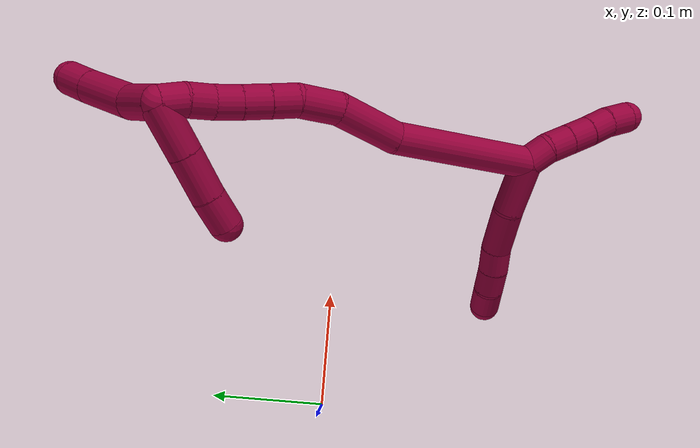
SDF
<sdf version="1.7">
 <world name="default">
  <model name="8">
   <static>0</static>
   <link name="8">
    <collision name="collision-cylinder-e_1_2_8">
     <pose>-0.003314 0.003257 -0.021569 -2.9917 -0.150787 1.57674</pose>
     <geometry><cylinder><radius>0.0125</radius><length>0.044127</length></cylinder></geometry>
     <surface>
      <friction><ode><mu>1.16</mu><mu2>1.16</mu2><slip1>0</slip1><slip2>0</slip2></ode></friction>
      <contact><ode><kp>1e+06</kp><kd>1</kd><max_vel>0</max_vel><min_depth>0.001</min_depth></ode></contact>
     </surface>
    </collision>
    <visual name="visual-cylinder-e_1_2_8">
     <pose>-0.003314 0.003257 -0.021569 -2.9917 -0.150787 1.57674</pose>
     <geometry><cylinder><radius>0.0125</radius><length>0.044127</length></cylinder></geometry>
     <material><ambient>0.584314 0 0.227451 1</ambient></material>
    </visual>
    <collision name="collision-cylinder-e_2_8_9">
     <pose>-0.009857 0.005557 -0.062805 3.0929 -0.162492 -2.56041</pose>
     <geometry><cylinder><radius>0.0125</radius><length>0.039909</length></cylinder></geometry>
     <surface>
      <friction><ode><mu>1.16</mu><mu2>1.16</mu2><slip1>0</slip1><slip2>0</slip2></ode></friction>
      <contact><ode><kp>1e+06</kp><kd>1</kd><max_vel>0</max_vel><min_depth>0.001</min_depth></ode></contact>
     </surface>
    </collision>
    <visual name="visual-cylinder-e_2_8_9">
     <pose>-0.009857 0.005557 -0.062805 3.0929 -0.162492 -2.56041</pose>
     <geometry><cylinder><radius>0.0125</radius><length>0.039909</length></cylinder></geometry>
     <material><ambient>0.584314 0 0.227451 1</ambient></material>
    </visual>
    <collision name="collision-cylinder-e_3_9_10">
     <pose>-0.016436 0.004474 -0.092846 3.12963 -0.312476 -3.06567</pose>
     <geometry><cylinder><radius>0.0125</radius><length>0.021802</length></cylinder></geometry>
     <surface>
      <friction><ode><mu>1.16</mu><mu2>1.16</mu2><slip1>0</slip1><slip2>0</slip2></ode></friction>
      <contact><ode><kp>1e+06</kp><kd>1</kd><max_vel>0</max_vel><min_depth>0.001</min_depth></ode></contact>
     </surface>
    </collision>
    <visual name="visual-cylinder-e_3_9_10">
     <pose>-0.016436 0.004474 -0.092846 3.12963 -0.312476 -3.06567</pose>
     <geometry><cylinder><radius>0.0125</radius><length>0.021802</length></cylinder></geometry>
     <material><ambient>0.584314 0 0.227451 1</ambient></material>
    </visual>
    <collision name="collision-cylinder-e_4_10_11">
     <pose>-0.022238 0.004277 -0.113658 3.13461 -0.230559 -3.08128</pose>
     <geometry><cylinder><radius>0.0125</radius><length>0.021448</length></cylinder></geometry>
     <surface>
      <friction><ode><mu>1.16</mu><mu2>1.16</mu2><slip1>0</slip1><slip2>0</slip2></ode></friction>
      <contact><ode><kp>1e+06</kp><kd>1</kd><max_vel>0</max_vel><min_depth>0.001</min_depth></ode></contact>
     </surface>
    </collision>
    <visual name="visual-cylinder-e_4_10_11">
     <pose>-0.022238 0.004277 -0.113658 3.13461 -0.230559 -3.08128</pose>
     <geometry><cylinder><radius>0.0125</radius><length>0.021448</length></cylinder></geometry>
     <material><ambient>0.584314 0 0.227451 1</ambient></material>
    </visual>
    <collision name="collision-cylinder-e_5_11_6">
     <pose>-0.026607 0.002041 -0.135081 2.94711 -0.169722 -1.43426</pose>
     <geometry><cylinder><radius>0.0125</radius><length>0.022714</length></cylinder></geometry>
     <surface>
      <friction><ode><mu>1.16</mu><mu2>1.16</mu2><slip1>0</slip1><slip2>0</slip2></ode></friction>
      <contact><ode><kp>1e+06</kp><kd>1</kd><max_vel>0</max_vel><min_depth>0.001</min_depth></ode></contact>
     </surface>
    </collision>
    <visual name="visual-cylinder-e_5_11_6">
     <pose>-0.026607 0.002041 -0.135081 2.94711 -0.169722 -1.43426</pose>
     <geometry><cylinder><radius>0.0125</radius><length>0.022714</length></cylinder></geometry>
     <material><ambient>0.584314 0 0.227451 1</ambient></material>
    </visual>
    <collision name="collision-cylinder-e_1_2_12">
     <pose>-0.003071 -0.007414 0.005967 0.893132 -0.312092 -0.150379</pose>
     <geometry><cylinder><radius>0.0125</radius><length>0.02</length></cylinder></geometry>
     <surface>
      <friction><ode><mu>1.16</mu><mu2>1.16</mu2><slip1>0</slip1><slip2>0</slip2></ode></friction>
      <contact><ode><kp>1e+06</kp><kd>1</kd><max_vel>0</max_vel><min_depth>0.001</min_depth></ode></contact>
     </surface>
    </collision>
    <visual name="visual-cylinder-e_1_2_12">
     <pose>-0.003071 -0.007414 0.005967 0.893132 -0.312092 -0.150379</pose>
     <geometry><cylinder><radius>0.0125</radius><length>0.02</length></cylinder></geometry>
     <material><ambient>0.584314 0 0.227451 1</ambient></material>
    </visual>
    <collision name="collision-cylinder-e_2_12_13">
     <pose>-0.01021 -0.023285 0.015388 1.18301 -0.419056 -0.28377</pose>
     <geometry><cylinder><radius>0.0125</radius><length>0.02</length></cylinder></geometry>
     <surface>
      <friction><ode><mu>1.16</mu><mu2>1.16</mu2><slip1>0</slip1><slip2>0</slip2></ode></friction>
      <contact><ode><kp>1e+06</kp><kd>1</kd><max_vel>0</max_vel><min_depth>0.001</min_depth></ode></contact>
     </surface>
    </collision>
    <visual name="visual-cylinder-e_2_12_13">
     <pose>-0.01021 -0.023285 0.015388 1.18301 -0.419056 -0.28377</pose>
     <geometry><cylinder><radius>0.0125</radius><length>0.02</length></cylinder></geometry>
     <material><ambient>0.584314 0 0.227451 1</ambient></material>
    </visual>
    <collision name="collision-cylinder-e_3_13_14">
     <pose>-0.018253 -0.040311 0.022124 1.20509 -0.408672 -0.283188</pose>
     <geometry><cylinder><radius>0.0125</radius><length>0.02</length></cylinder></geometry>
     <surface>
      <friction><ode><mu>1.16</mu><mu2>1.16</mu2><slip1>0</slip1><slip2>0</slip2></ode></friction>
      <contact><ode><kp>1e+06</kp><kd>1</kd><max_vel>0</max_vel><min_depth>0.001</min_depth></ode></contact>
     </surface>
    </collision>
    <visual name="visual-cylinder-e_3_13_14">
     <pose>-0.018253 -0.040311 0.022124 1.20509 -0.408672 -0.283188</pose>
     <geometry><cylinder><radius>0.0125</radius><length>0.02</length></cylinder></geometry>
     <material><ambient>0.584314 0 0.227451 1</ambient></material>
    </visual>
    <collision name="collision-cylinder-e_4_14_15">
     <pose>-0.025628 -0.057679 0.028724 1.21013 -0.347054 -0.241283</pose>
     <geometry><cylinder><radius>0.0125</radius><length>0.02</length></cylinder></geometry>
     <surface>
      <friction><ode><mu>1.16</mu><mu2>1.16</mu2><slip1>0</slip1><slip2>0</slip2></ode></friction>
      <contact><ode><kp>1e+06</kp><kd>1</kd><max_vel>0</max_vel><min_depth>0.001</min_depth></ode></contact>
     </surface>
    </collision>
    <visual name="visual-cylinder-e_4_14_15">
     <pose>-0.025628 -0.057679 0.028724 1.21013 -0.347054 -0.241283</pose>
     <geometry><cylinder><radius>0.0125</radius><length>0.02</length></cylinder></geometry>
     <material><ambient>0.584314 0 0.227451 1</ambient></material>
    </visual>
    <collision name="collision-cylinder-e_5_15_5">
     <pose>-0.033918 -0.074851 0.034492 1.28621 -0.510797 -0.386445</pose>
     <geometry><cylinder><radius>0.0125</radius><length>0.02</length></cylinder></geometry>
     <surface>
      <friction><ode><mu>1.16</mu><mu2>1.16</mu2><slip1>0</slip1><slip2>0</slip2></ode></friction>
      <contact><ode><kp>1e+06</kp><kd>1</kd><max_vel>0</max_vel><min_depth>0.001</min_depth></ode></contact>
     </surface>
    </collision>
    <visual name="visual-cylinder-e_5_15_5">
     <pose>-0.033918 -0.074851 0.034492 1.28621 -0.510797 -0.386445</pose>
     <geometry><cylinder><radius>0.0125</radius><length>0.02</length></cylinder></geometry>
     <material><ambient>0.584314 0 0.227451 1</ambient></material>
    </visual>
    <collision name="collision-cylinder-e_1_2_16">
     <pose>0.040882 0.039874 0.001949 -1.52195 0.797281 -0.762913</pose>
     <geometry><cylinder><radius>0.0125</radius><length>0.114282</length></cylinder></geometry>
     <surface>
      <friction><ode><mu>1.16</mu><mu2>1.16</mu2><slip1>0</slip1><slip2>0</slip2></ode></friction>
      <contact><ode><kp>1e+06</kp><kd>1</kd><max_vel>0</max_vel><min_depth>0.001</min_depth></ode></contact>
     </surface>
    </collision>
    <visual name="visual-cylinder-e_1_2_16">
     <pose>0.040882 0.039874 0.001949 -1.52195 0.797281 -0.762913</pose>
     <geometry><cylinder><radius>0.0125</radius><length>0.114282</length></cylinder></geometry>
     <material><ambient>0.584314 0 0.227451 1</ambient></material>
    </visual>
    <collision name="collision-cylinder-e_2_16_17">
     <pose>0.100443 0.096168 0.011858 -1.11943 0.797091 -0.515904</pose>
     <geometry><cylinder><radius>0.0125</radius><length>0.052226</length></cylinder></geometry>
     <surface>
      <friction><ode><mu>1.16</mu><mu2>1.16</mu2><slip1>0</slip1><slip2>0</slip2></ode></friction>
      <contact><ode><kp>1e+06</kp><kd>1</kd><max_vel>0</max_vel><min_depth>0.001</min_depth></ode></contact>
     </surface>
    </collision>
    <visual name="visual-cylinder-e_2_16_17">
     <pose>0.100443 0.096168 0.011858 -1.11943 0.797091 -0.515904</pose>
     <geometry><cylinder><radius>0.0125</radius><length>0.052226</length></cylinder></geometry>
     <material><ambient>0.584314 0 0.227451 1</ambient></material>
    </visual>
    <collision name="collision-cylinder-e_3_17_18">
     <pose>0.129302 0.125157 0.021739 -1.41907 0.675108 -0.585483</pose>
     <geometry><cylinder><radius>0.0125</radius><length>0.032573</length></cylinder></geometry>
     <surface>
      <friction><ode><mu>1.16</mu><mu2>1.16</mu2><slip1>0</slip1><slip2>0</slip2></ode></friction>
      <contact><ode><kp>1e+06</kp><kd>1</kd><max_vel>0</max_vel><min_depth>0.001</min_depth></ode></contact>
     </surface>
    </collision>
    <visual name="visual-cylinder-e_3_17_18">
     <pose>0.129302 0.125157 0.021739 -1.41907 0.675108 -0.585483</pose>
     <geometry><cylinder><radius>0.0125</radius><length>0.032573</length></cylinder></geometry>
     <material><ambient>0.584314 0 0.227451 1</ambient></material>
    </visual>
    <collision name="collision-cylinder-e_4_18_19">
     <pose>0.145687 0.145727 0.022239 -1.74668 0.652181 -0.767144</pose>
     <geometry><cylinder><radius>0.0125</radius><length>0.020453</length></cylinder></geometry>
     <surface>
      <friction><ode><mu>1.16</mu><mu2>1.16</mu2><slip1>0</slip1><slip2>0</slip2></ode></friction>
      <contact><ode><kp>1e+06</kp><kd>1</kd><max_vel>0</max_vel><min_depth>0.001</min_depth></ode></contact>
     </surface>
    </collision>
    <visual name="visual-cylinder-e_4_18_19">
     <pose>0.145687 0.145727 0.022239 -1.74668 0.652181 -0.767144</pose>
     <geometry><cylinder><radius>0.0125</radius><length>0.020453</length></cylinder></geometry>
     <material><ambient>0.584314 0 0.227451 1</ambient></material>
    </visual>
    <collision name="collision-cylinder-e_5_19_20">
     <pose>0.158179 0.161609 0.01941 -1.74743 0.665684 -0.783106</pose>
     <geometry><cylinder><radius>0.0125</radius><length>0.020354</length></cylinder></geometry>
     <surface>
      <friction><ode><mu>1.16</mu><mu2>1.16</mu2><slip1>0</slip1><slip2>0</slip2></ode></friction>
      <contact><ode><kp>1e+06</kp><kd>1</kd><max_vel>0</max_vel><min_depth>0.001</min_depth></ode></contact>
     </surface>
    </collision>
    <visual name="visual-cylinder-e_5_19_20">
     <pose>0.158179 0.161609 0.01941 -1.74743 0.665684 -0.783106</pose>
     <geometry><cylinder><radius>0.0125</radius><length>0.020354</length></cylinder></geometry>
     <material><ambient>0.584314 0 0.227451 1</ambient></material>
    </visual>
    <collision name="collision-cylinder-e_6_20_21">
     <pose>0.170797 0.17719 0.016927 -1.70974 0.683465 -0.776291</pose>
     <geometry><cylinder><radius>0.0125</radius><length>0.020058</length></cylinder></geometry>
     <surface>
      <friction><ode><mu>1.16</mu><mu2>1.16</mu2><slip1>0</slip1><slip2>0</slip2></ode></friction>
      <contact><ode><kp>1e+06</kp><kd>1</kd><max_vel>0</max_vel><min_depth>0.001</min_depth></ode></contact>
     </surface>
    </collision>
    <visual name="visual-cylinder-e_6_20_21">
     <pose>0.170797 0.17719 0.016927 -1.70974 0.683465 -0.776291</pose>
     <geometry><cylinder><radius>0.0125</radius><length>0.020058</length></cylinder></geometry>
     <material><ambient>0.584314 0 0.227451 1</ambient></material>
    </visual>
    <collision name="collision-cylinder-e_7_21_22">
     <pose>0.182364 0.193394 0.016725 -1.46825 0.549421 -0.498084</pose>
     <geometry><cylinder><radius>0.0125</radius><length>0.020045</length></cylinder></geometry>
     <surface>
      <friction><ode><mu>1.16</mu><mu2>1.16</mu2><slip1>0</slip1><slip2>0</slip2></ode></friction>
      <contact><ode><kp>1e+06</kp><kd>1</kd><max_vel>0</max_vel><min_depth>0.001</min_depth></ode></contact>
     </surface>
    </collision>
    <visual name="visual-cylinder-e_7_21_22">
     <pose>0.182364 0.193394 0.016725 -1.46825 0.549421 -0.498084</pose>
     <geometry><cylinder><radius>0.0125</radius><length>0.020045</length></cylinder></geometry>
     <material><ambient>0.584314 0 0.227451 1</ambient></material>
    </visual>
    <collision name="collision-cylinder-e_8_22_1">
     <pose>0.192387 0.21063 0.016667 -1.67717 0.499169 -0.552623</pose>
     <geometry><cylinder><radius>0.0125</radius><length>0.020008</length></cylinder></geometry>
     <surface>
      <friction><ode><mu>1.16</mu><mu2>1.16</mu2><slip1>0</slip1><slip2>0</slip2></ode></friction>
      <contact><ode><kp>1e+06</kp><kd>1</kd><max_vel>0</max_vel><min_depth>0.001</min_depth></ode></contact>
     </surface>
    </collision>
    <visual name="visual-cylinder-e_8_22_1">
     <pose>0.192387 0.21063 0.016667 -1.67717 0.499169 -0.552623</pose>
     <geometry><cylinder><radius>0.0125</radius><length>0.020008</length></cylinder></geometry>
     <material><ambient>0.584314 0 0.227451 1</ambient></material>
    </visual>
    <collision name="collision-cylinder-e_1_1_23">
     <pose>0.209341 0.216749 0.006921 2.85318 0.923619 2.57382</pose>
     <geometry><cylinder><radius>0.0125</radius><length>0.030497</length></cylinder></geometry>
     <surface>
      <friction><ode><mu>1.16</mu><mu2>1.16</mu2><slip1>0</slip1><slip2>0</slip2></ode></friction>
      <contact><ode><kp>1e+06</kp><kd>1</kd><max_vel>0</max_vel><min_depth>0.001</min_depth></ode></contact>
     </surface>
    </collision>
    <visual name="visual-cylinder-e_1_1_23">
     <pose>0.209341 0.216749 0.006921 2.85318 0.923619 2.57382</pose>
     <geometry><cylinder><radius>0.0125</radius><length>0.030497</length></cylinder></geometry>
     <material><ambient>0.584314 0 0.227451 1</ambient></material>
    </visual>
    <collision name="collision-cylinder-e_2_23_24">
     <pose>0.242218 0.21094 -0.010335 2.77986 1.15983 2.59714</pose>
     <geometry><cylinder><radius>0.0125</radius><length>0.045185</length></cylinder></geometry>
     <surface>
      <friction><ode><mu>1.16</mu><mu2>1.16</mu2><slip1>0</slip1><slip2>0</slip2></ode></friction>
      <contact><ode><kp>1e+06</kp><kd>1</kd><max_vel>0</max_vel><min_depth>0.001</min_depth></ode></contact>
     </surface>
    </collision>
    <visual name="visual-cylinder-e_2_23_24">
     <pose>0.242218 0.21094 -0.010335 2.77986 1.15983 2.59714</pose>
     <geometry><cylinder><radius>0.0125</radius><length>0.045185</length></cylinder></geometry>
     <material><ambient>0.584314 0 0.227451 1</ambient></material>
    </visual>
    <collision name="collision-cylinder-e_3_24_4">
     <pose>0.274302 0.206134 -0.022763 2.75739 1.20934 2.59284</pose>
     <geometry><cylinder><radius>0.0125</radius><length>0.024318</length></cylinder></geometry>
     <surface>
      <friction><ode><mu>1.16</mu><mu2>1.16</mu2><slip1>0</slip1><slip2>0</slip2></ode></friction>
      <contact><ode><kp>1e+06</kp><kd>1</kd><max_vel>0</max_vel><min_depth>0.001</min_depth></ode></contact>
     </surface>
    </collision>
    <visual name="visual-cylinder-e_3_24_4">
     <pose>0.274302 0.206134 -0.022763 2.75739 1.20934 2.59284</pose>
     <geometry><cylinder><radius>0.0125</radius><length>0.024318</length></cylinder></geometry>
     <material><ambient>0.584314 0 0.227451 1</ambient></material>
    </visual>
    <collision name="collision-cylinder-e_1_1_25">
     <pose>0.183893 0.216144 0.001734 2.9155 -0.746226 -2.57703</pose>
     <geometry><cylinder><radius>0.0125</radius><length>0.039133</length></cylinder></geometry>
     <surface>
      <friction><ode><mu>1.16</mu><mu2>1.16</mu2><slip1>0</slip1><slip2>0</slip2></ode></friction>
      <contact><ode><kp>1e+06</kp><kd>1</kd><max_vel>0</max_vel><min_depth>0.001</min_depth></ode></contact>
     </surface>
    </collision>
    <visual name="visual-cylinder-e_1_1_25">
     <pose>0.183893 0.216144 0.001734 2.9155 -0.746226 -2.57703</pose>
     <geometry><cylinder><radius>0.0125</radius><length>0.039133</length></cylinder></geometry>
     <material><ambient>0.584314 0 0.227451 1</ambient></material>
    </visual>
    <collision name="collision-cylinder-e_2_25_26">
     <pose>0.159127 0.209733 -0.025233 2.90037 -0.710285 -2.50987</pose>
     <geometry><cylinder><radius>0.0125</radius><length>0.035223</length></cylinder></geometry>
     <surface>
      <friction><ode><mu>1.16</mu><mu2>1.16</mu2><slip1>0</slip1><slip2>0</slip2></ode></friction>
      <contact><ode><kp>1e+06</kp><kd>1</kd><max_vel>0</max_vel><min_depth>0.001</min_depth></ode></contact>
     </surface>
    </collision>
    <visual name="visual-cylinder-e_2_25_26">
     <pose>0.159127 0.209733 -0.025233 2.90037 -0.710285 -2.50987</pose>
     <geometry><cylinder><radius>0.0125</radius><length>0.035223</length></cylinder></geometry>
     <material><ambient>0.584314 0 0.227451 1</ambient></material>
    </visual>
    <collision name="collision-cylinder-e_3_26_3">
     <pose>0.139369 0.203264 -0.04743 2.80028 -0.701402 -2.26109</pose>
     <geometry><cylinder><radius>0.0125</radius><length>0.025645</length></cylinder></geometry>
     <surface>
      <friction><ode><mu>1.16</mu><mu2>1.16</mu2><slip1>0</slip1><slip2>0</slip2></ode></friction>
      <contact><ode><kp>1e+06</kp><kd>1</kd><max_vel>0</max_vel><min_depth>0.001</min_depth></ode></contact>
     </surface>
    </collision>
    <visual name="visual-cylinder-e_3_26_3">
     <pose>0.139369 0.203264 -0.04743 2.80028 -0.701402 -2.26109</pose>
     <geometry><cylinder><radius>0.0125</radius><length>0.025645</length></cylinder></geometry>
     <material><ambient>0.584314 0 0.227451 1</ambient></material>
    </visual>
    <collision name="collision-sphere-3">
     <pose>0.131095 0.199986 -0.05666 0 -0 0</pose>
     <geometry><sphere><radius>0.0125</radius></sphere></geometry>
     <surface>
      <friction><ode><mu>1.16</mu><mu2>1.16</mu2><slip1>0</slip1><slip2>0</slip2></ode></friction>
      <contact><ode><kp>1e+06</kp><kd>1</kd><max_vel>0</max_vel><min_depth>0.001</min_depth></ode></contact>
     </surface>
    </collision>
    <visual name="visual-sphere-3">
     <pose>0.131095 0.199986 -0.05666 0 -0 0</pose>
     <geometry><sphere><radius>0.0125</radius></sphere></geometry>
     <material><ambient>0.584314 0 0.227451 1</ambient></material>
    </visual>
    <collision name="collision-sphere-26">
     <pose>0.147643 0.206543 -0.038199 0 -0 0</pose>
     <geometry><sphere><radius>0.0125</radius></sphere></geometry>
     <surface>
      <friction><ode><mu>1.16</mu><mu2>1.16</mu2><slip1>0</slip1><slip2>0</slip2></ode></friction>
      <contact><ode><kp>1e+06</kp><kd>1</kd><max_vel>0</max_vel><min_depth>0.001</min_depth></ode></contact>
     </surface>
    </collision>
    <visual name="visual-sphere-26">
     <pose>0.147643 0.206543 -0.038199 0 -0 0</pose>
     <geometry><sphere><radius>0.0125</radius></sphere></geometry>
     <material><ambient>0.584314 0 0.227451 1</ambient></material>
    </visual>
    <collision name="collision-sphere-25">
     <pose>0.17061 0.212923 -0.012267 0 -0 0</pose>
     <geometry><sphere><radius>0.0125</radius></sphere></geometry>
     <surface>
      <friction><ode><mu>1.16</mu><mu2>1.16</mu2><slip1>0</slip1><slip2>0</slip2></ode></friction>
      <contact><ode><kp>1e+06</kp><kd>1</kd><max_vel>0</max_vel><min_depth>0.001</min_depth></ode></contact>
     </surface>
    </collision>
    <visual name="visual-sphere-25">
     <pose>0.17061 0.212923 -0.012267 0 -0 0</pose>
     <geometry><sphere><radius>0.0125</radius></sphere></geometry>
     <material><ambient>0.584314 0 0.227451 1</ambient></material>
    </visual>
    <collision name="collision-sphere-4">
     <pose>0.285676 0.204523 -0.026749 0 -0 0</pose>
     <geometry><sphere><radius>0.0125</radius></sphere></geometry>
     <surface>
      <friction><ode><mu>1.16</mu><mu2>1.16</mu2><slip1>0</slip1><slip2>0</slip2></ode></friction>
      <contact><ode><kp>1e+06</kp><kd>1</kd><max_vel>0</max_vel><min_depth>0.001</min_depth></ode></contact>
     </surface>
    </collision>
    <visual name="visual-sphere-4">
     <pose>0.285676 0.204523 -0.026749 0 -0 0</pose>
     <geometry><sphere><radius>0.0125</radius></sphere></geometry>
     <material><ambient>0.584314 0 0.227451 1</ambient></material>
    </visual>
    <collision name="collision-sphere-24">
     <pose>0.262929 0.207746 -0.018776 0 -0 0</pose>
     <geometry><sphere><radius>0.0125</radius></sphere></geometry>
     <surface>
      <friction><ode><mu>1.16</mu><mu2>1.16</mu2><slip1>0</slip1><slip2>0</slip2></ode></friction>
      <contact><ode><kp>1e+06</kp><kd>1</kd><max_vel>0</max_vel><min_depth>0.001</min_depth></ode></contact>
     </surface>
    </collision>
    <visual name="visual-sphere-24">
     <pose>0.262929 0.207746 -0.018776 0 -0 0</pose>
     <geometry><sphere><radius>0.0125</radius></sphere></geometry>
     <material><ambient>0.584314 0 0.227451 1</ambient></material>
    </visual>
    <collision name="collision-sphere-23">
     <pose>0.221506 0.214134 -0.001894 0 -0 0</pose>
     <geometry><sphere><radius>0.0125</radius></sphere></geometry>
     <surface>
      <friction><ode><mu>1.16</mu><mu2>1.16</mu2><slip1>0</slip1><slip2>0</slip2></ode></friction>
      <contact><ode><kp>1e+06</kp><kd>1</kd><max_vel>0</max_vel><min_depth>0.001</min_depth></ode></contact>
     </surface>
    </collision>
    <visual name="visual-sphere-23">
     <pose>0.221506 0.214134 -0.001894 0 -0 0</pose>
     <geometry><sphere><radius>0.0125</radius></sphere></geometry>
     <material><ambient>0.584314 0 0.227451 1</ambient></material>
    </visual>
    <collision name="collision-sphere-1">
     <pose>0.197176 0.219364 0.015735 0 -0 0</pose>
     <geometry><sphere><radius>0.0125</radius></sphere></geometry>
     <surface>
      <friction><ode><mu>1.16</mu><mu2>1.16</mu2><slip1>0</slip1><slip2>0</slip2></ode></friction>
      <contact><ode><kp>1e+06</kp><kd>1</kd><max_vel>0</max_vel><min_depth>0.001</min_depth></ode></contact>
     </surface>
    </collision>
    <visual name="visual-sphere-1">
     <pose>0.197176 0.219364 0.015735 0 -0 0</pose>
     <geometry><sphere><radius>0.0125</radius></sphere></geometry>
     <material><ambient>0.584314 0 0.227451 1</ambient></material>
    </visual>
    <collision name="collision-sphere-22">
     <pose>0.187598 0.201896 0.0176 0 -0 0</pose>
     <geometry><sphere><radius>0.0125</radius></sphere></geometry>
     <surface>
      <friction><ode><mu>1.16</mu><mu2>1.16</mu2><slip1>0</slip1><slip2>0</slip2></ode></friction>
      <contact><ode><kp>1e+06</kp><kd>1</kd><max_vel>0</max_vel><min_depth>0.001</min_depth></ode></contact>
     </surface>
    </collision>
    <visual name="visual-sphere-22">
     <pose>0.187598 0.201896 0.0176 0 -0 0</pose>
     <geometry><sphere><radius>0.0125</radius></sphere></geometry>
     <material><ambient>0.584314 0 0.227451 1</ambient></material>
    </visual>
    <collision name="collision-sphere-21">
     <pose>0.177131 0.184891 0.01585 0 -0 0</pose>
     <geometry><sphere><radius>0.0125</radius></sphere></geometry>
     <surface>
      <friction><ode><mu>1.16</mu><mu2>1.16</mu2><slip1>0</slip1><slip2>0</slip2></ode></friction>
      <contact><ode><kp>1e+06</kp><kd>1</kd><max_vel>0</max_vel><min_depth>0.001</min_depth></ode></contact>
     </surface>
    </collision>
    <visual name="visual-sphere-21">
     <pose>0.177131 0.184891 0.01585 0 -0 0</pose>
     <geometry><sphere><radius>0.0125</radius></sphere></geometry>
     <material><ambient>0.584314 0 0.227451 1</ambient></material>
    </visual>
    <collision name="collision-sphere-6">
     <pose>-0.028525 -0.000123 -0.146064 0 -0 0</pose>
     <geometry><sphere><radius>0.0125</radius></sphere></geometry>
     <surface>
      <friction><ode><mu>1.16</mu><mu2>1.16</mu2><slip1>0</slip1><slip2>0</slip2></ode></friction>
      <contact><ode><kp>1e+06</kp><kd>1</kd><max_vel>0</max_vel><min_depth>0.001</min_depth></ode></contact>
     </surface>
    </collision>
    <visual name="visual-sphere-6">
     <pose>-0.028525 -0.000123 -0.146064 0 -0 0</pose>
     <geometry><sphere><radius>0.0125</radius></sphere></geometry>
     <material><ambient>0.584314 0 0.227451 1</ambient></material>
    </visual>
    <collision name="collision-sphere-11">
     <pose>-0.024689 0.004204 -0.124098 0 -0 0</pose>
     <geometry><sphere><radius>0.0125</radius></sphere></geometry>
     <surface>
      <friction><ode><mu>1.16</mu><mu2>1.16</mu2><slip1>0</slip1><slip2>0</slip2></ode></friction>
      <contact><ode><kp>1e+06</kp><kd>1</kd><max_vel>0</max_vel><min_depth>0.001</min_depth></ode></contact>
     </surface>
    </collision>
    <visual name="visual-sphere-11">
     <pose>-0.024689 0.004204 -0.124098 0 -0 0</pose>
     <geometry><sphere><radius>0.0125</radius></sphere></geometry>
     <material><ambient>0.584314 0 0.227451 1</ambient></material>
    </visual>
    <collision name="collision-sphere-10">
     <pose>-0.019787 0.00435 -0.103218 0 -0 0</pose>
     <geometry><sphere><radius>0.0125</radius></sphere></geometry>
     <surface>
      <friction><ode><mu>1.16</mu><mu2>1.16</mu2><slip1>0</slip1><slip2>0</slip2></ode></friction>
      <contact><ode><kp>1e+06</kp><kd>1</kd><max_vel>0</max_vel><min_depth>0.001</min_depth></ode></contact>
     </surface>
    </collision>
    <visual name="visual-sphere-10">
     <pose>-0.019787 0.00435 -0.103218 0 -0 0</pose>
     <geometry><sphere><radius>0.0125</radius></sphere></geometry>
     <material><ambient>0.584314 0 0.227451 1</ambient></material>
    </visual>
    <collision name="collision-sphere-9">
     <pose>-0.013085 0.004598 -0.082473 0 -0 0</pose>
     <geometry><sphere><radius>0.0125</radius></sphere></geometry>
     <surface>
      <friction><ode><mu>1.16</mu><mu2>1.16</mu2><slip1>0</slip1><slip2>0</slip2></ode></friction>
      <contact><ode><kp>1e+06</kp><kd>1</kd><max_vel>0</max_vel><min_depth>0.001</min_depth></ode></contact>
     </surface>
    </collision>
    <visual name="visual-sphere-9">
     <pose>-0.013085 0.004598 -0.082473 0 -0 0</pose>
     <geometry><sphere><radius>0.0125</radius></sphere></geometry>
     <material><ambient>0.584314 0 0.227451 1</ambient></material>
    </visual>
    <collision name="collision-sphere-2">
     <geometry><sphere><radius>0.0125</radius></sphere></geometry>
     <surface>
      <friction><ode><mu>1.16</mu><mu2>1.16</mu2><slip1>0</slip1><slip2>0</slip2></ode></friction>
      <contact><ode><kp>1e+06</kp><kd>1</kd><max_vel>0</max_vel><min_depth>0.001</min_depth></ode></contact>
     </surface>
    </collision>
    <visual name="visual-sphere-2">
     <geometry><sphere><radius>0.0125</radius></sphere></geometry>
     <material><ambient>0.584314 0 0.227451 1</ambient></material>
    </visual>
    <collision name="collision-sphere-19">
     <pose>0.151894 0.153729 0.020817 0 -0 0</pose>
     <geometry><sphere><radius>0.0125</radius></sphere></geometry>
     <surface>
      <friction><ode><mu>1.16</mu><mu2>1.16</mu2><slip1>0</slip1><slip2>0</slip2></ode></friction>
      <contact><ode><kp>1e+06</kp><kd>1</kd><max_vel>0</max_vel><min_depth>0.001</min_depth></ode></contact>
     </surface>
    </collision>
    <visual name="visual-sphere-19">
     <pose>0.151894 0.153729 0.020817 0 -0 0</pose>
     <geometry><sphere><radius>0.0125</radius></sphere></geometry>
     <material><ambient>0.584314 0 0.227451 1</ambient></material>
    </visual>
    <collision name="collision-sphere-8">
     <pose>-0.006629 0.006515 -0.043137 0 -0 0</pose>
     <geometry><sphere><radius>0.0125</radius></sphere></geometry>
     <surface>
      <friction><ode><mu>1.16</mu><mu2>1.16</mu2><slip1>0</slip1><slip2>0</slip2></ode></friction>
      <contact><ode><kp>1e+06</kp><kd>1</kd><max_vel>0</max_vel><min_depth>0.001</min_depth></ode></contact>
     </surface>
    </collision>
    <visual name="visual-sphere-8">
     <pose>-0.006629 0.006515 -0.043137 0 -0 0</pose>
     <geometry><sphere><radius>0.0125</radius></sphere></geometry>
     <material><ambient>0.584314 0 0.227451 1</ambient></material>
    </visual>
    <collision name="collision-sphere-12">
     <pose>-0.006141 -0.014828 0.011934 0 -0 0</pose>
     <geometry><sphere><radius>0.0125</radius></sphere></geometry>
     <surface>
      <friction><ode><mu>1.16</mu><mu2>1.16</mu2><slip1>0</slip1><slip2>0</slip2></ode></friction>
      <contact><ode><kp>1e+06</kp><kd>1</kd><max_vel>0</max_vel><min_depth>0.001</min_depth></ode></contact>
     </surface>
    </collision>
    <visual name="visual-sphere-12">
     <pose>-0.006141 -0.014828 0.011934 0 -0 0</pose>
     <geometry><sphere><radius>0.0125</radius></sphere></geometry>
     <material><ambient>0.584314 0 0.227451 1</ambient></material>
    </visual>
    <collision name="collision-sphere-13">
     <pose>-0.014279 -0.031741 0.018842 0 -0 0</pose>
     <geometry><sphere><radius>0.0125</radius></sphere></geometry>
     <surface>
      <friction><ode><mu>1.16</mu><mu2>1.16</mu2><slip1>0</slip1><slip2>0</slip2></ode></friction>
      <contact><ode><kp>1e+06</kp><kd>1</kd><max_vel>0</max_vel><min_depth>0.001</min_depth></ode></contact>
     </surface>
    </collision>
    <visual name="visual-sphere-13">
     <pose>-0.014279 -0.031741 0.018842 0 -0 0</pose>
     <geometry><sphere><radius>0.0125</radius></sphere></geometry>
     <material><ambient>0.584314 0 0.227451 1</ambient></material>
    </visual>
    <collision name="collision-sphere-14">
     <pose>-0.022227 -0.04888 0.025405 0 -0 0</pose>
     <geometry><sphere><radius>0.0125</radius></sphere></geometry>
     <surface>
      <friction><ode><mu>1.16</mu><mu2>1.16</mu2><slip1>0</slip1><slip2>0</slip2></ode></friction>
      <contact><ode><kp>1e+06</kp><kd>1</kd><max_vel>0</max_vel><min_depth>0.001</min_depth></ode></contact>
     </surface>
    </collision>
    <visual name="visual-sphere-14">
     <pose>-0.022227 -0.04888 0.025405 0 -0 0</pose>
     <geometry><sphere><radius>0.0125</radius></sphere></geometry>
     <material><ambient>0.584314 0 0.227451 1</ambient></material>
    </visual>
    <collision name="collision-sphere-15">
     <pose>-0.029029 -0.066478 0.032043 0 -0 0</pose>
     <geometry><sphere><radius>0.0125</radius></sphere></geometry>
     <surface>
      <friction><ode><mu>1.16</mu><mu2>1.16</mu2><slip1>0</slip1><slip2>0</slip2></ode></friction>
      <contact><ode><kp>1e+06</kp><kd>1</kd><max_vel>0</max_vel><min_depth>0.001</min_depth></ode></contact>
     </surface>
    </collision>
    <visual name="visual-sphere-15">
     <pose>-0.029029 -0.066478 0.032043 0 -0 0</pose>
     <geometry><sphere><radius>0.0125</radius></sphere></geometry>
     <material><ambient>0.584314 0 0.227451 1</ambient></material>
    </visual>
    <collision name="collision-sphere-5">
     <pose>-0.038807 -0.083223 0.036941 0 -0 0</pose>
     <geometry><sphere><radius>0.0125</radius></sphere></geometry>
     <surface>
      <friction><ode><mu>1.16</mu><mu2>1.16</mu2><slip1>0</slip1><slip2>0</slip2></ode></friction>
      <contact><ode><kp>1e+06</kp><kd>1</kd><max_vel>0</max_vel><min_depth>0.001</min_depth></ode></contact>
     </surface>
    </collision>
    <visual name="visual-sphere-5">
     <pose>-0.038807 -0.083223 0.036941 0 -0 0</pose>
     <geometry><sphere><radius>0.0125</radius></sphere></geometry>
     <material><ambient>0.584314 0 0.227451 1</ambient></material>
    </visual>
    <collision name="collision-sphere-16">
     <pose>0.081764 0.079748 0.003899 0 -0 0</pose>
     <geometry><sphere><radius>0.0125</radius></sphere></geometry>
     <surface>
      <friction><ode><mu>1.16</mu><mu2>1.16</mu2><slip1>0</slip1><slip2>0</slip2></ode></friction>
      <contact><ode><kp>1e+06</kp><kd>1</kd><max_vel>0</max_vel><min_depth>0.001</min_depth></ode></contact>
     </surface>
    </collision>
    <visual name="visual-sphere-16">
     <pose>0.081764 0.079748 0.003899 0 -0 0</pose>
     <geometry><sphere><radius>0.0125</radius></sphere></geometry>
     <material><ambient>0.584314 0 0.227451 1</ambient></material>
    </visual>
    <collision name="collision-sphere-17">
     <pose>0.119123 0.112589 0.019818 0 -0 0</pose>
     <geometry><sphere><radius>0.0125</radius></sphere></geometry>
     <surface>
      <friction><ode><mu>1.16</mu><mu2>1.16</mu2><slip1>0</slip1><slip2>0</slip2></ode></friction>
      <contact><ode><kp>1e+06</kp><kd>1</kd><max_vel>0</max_vel><min_depth>0.001</min_depth></ode></contact>
     </surface>
    </collision>
    <visual name="visual-sphere-17">
     <pose>0.119123 0.112589 0.019818 0 -0 0</pose>
     <geometry><sphere><radius>0.0125</radius></sphere></geometry>
     <material><ambient>0.584314 0 0.227451 1</ambient></material>
    </visual>
    <collision name="collision-sphere-18">
     <pose>0.13948 0.137724 0.023661 0 -0 0</pose>
     <geometry><sphere><radius>0.0125</radius></sphere></geometry>
     <surface>
      <friction><ode><mu>1.16</mu><mu2>1.16</mu2><slip1>0</slip1><slip2>0</slip2></ode></friction>
      <contact><ode><kp>1e+06</kp><kd>1</kd><max_vel>0</max_vel><min_depth>0.001</min_depth></ode></contact>
     </surface>
    </collision>
    <visual name="visual-sphere-18">
     <pose>0.13948 0.137724 0.023661 0 -0 0</pose>
     <geometry><sphere><radius>0.0125</radius></sphere></geometry>
     <material><ambient>0.584314 0 0.227451 1</ambient></material>
    </visual>
    <collision name="collision-sphere-20">
     <pose>0.164464 0.169488 0.018004 0 -0 0</pose>
     <geometry><sphere><radius>0.0125</radius></sphere></geometry>
     <surface>
      <friction><ode><mu>1.16</mu><mu2>1.16</mu2><slip1>0</slip1><slip2>0</slip2></ode></friction>
      <contact><ode><kp>1e+06</kp><kd>1</kd><max_vel>0</max_vel><min_depth>0.001</min_depth></ode></contact>
     </surface>
    </collision>
    <visual name="visual-sphere-20">
     <pose>0.164464 0.169488 0.018004 0 -0 0</pose>
     <geometry><sphere><radius>0.0125</radius></sphere></geometry>
     <material><ambient>0.584314 0 0.227451 1</ambient></material>
    </visual>
    <inertial>
     <pose>0.090444 0.093752 -0.011057 0 -0 0</pose>
     <mass>0.75</mass>
     <inertia><ixx>3e-06</ixx><ixy>0</ixy><ixz>0</ixz><iyy>5.5e-05</iyy><iyz>0</iyz><izz>-0.000221</izz></inertia>
    </inertial>
   </link>
   <pose>0.216184 -0.151403 0.131086 0.802507 0.208567 1.01463</pose>
  </model>
 </world>
</sdf>
